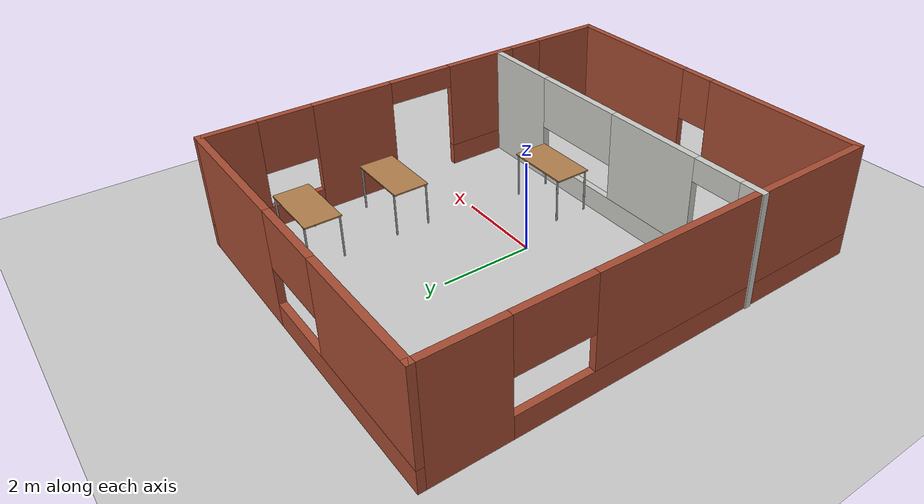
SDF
<sdf version="1.7">
 <world name="default">
  <light name="sun" type="directional">
   <pose>0 0 10 0 -0 0</pose>
   <diffuse>0.8 0.8 0.8 1</diffuse>
   <specular>0.2 0.2 0.2 1</specular>
   <attenuation>
    <range>1000</range>
    <constant>0.9</constant>
    <linear>0.01</linear>
    <quadratic>0.001</quadratic>
   </attenuation>
   <direction>-0.5 0.1 -0.9</direction>
   <spot><inner_angle>0</inner_angle><outer_angle>0</outer_angle><falloff>0</falloff></spot>
  </light>
  <model name="ground_plane">
   <static>1</static>
   <link name="link">
    <collision name="collision">
     <geometry><plane><normal>0 0 1</normal><size>100 100</size></plane></geometry>
     <surface>
      <contact><collide_bitmask>65535</collide_bitmask></contact>
      <friction><ode><mu>100</mu><mu2>50</mu2></ode></friction>
     </surface>
    </collision>
    <visual name="visual">
     <cast_shadows>0</cast_shadows>
     <geometry><plane><normal>0 0 1</normal><size>100 100</size></plane></geometry>
     <material>
      <script><uri>file://media/materials/scripts/gazebo.material</uri><name>Gazebo/Grey</name></script>
     </material>
    </visual>
   </link>
  </model>
  <gravity>0 0 -9.8</gravity>
  <magnetic_field>6e-06 2.3e-05 -4.2e-05</magnetic_field>
  <atmosphere type="adiabatic"/>
  <physics type="ode">
   <max_step_size>0.001</max_step_size>
   <real_time_factor>1</real_time_factor>
   <real_time_update_rate>1000</real_time_update_rate>
  </physics>
  <scene><ambient>0.4 0.4 0.4 1</ambient><background>0.7 0.7 0.7 1</background><shadows>1</shadows></scene>
  <spherical_coordinates>
   <surface_model>EARTH_WGS84</surface_model>
   <latitude_deg>0</latitude_deg>
   <longitude_deg>0</longitude_deg>
   <elevation>0</elevation>
   <heading_deg>0</heading_deg>
  </spherical_coordinates>
  <model name="canteen1">
   <pose>-0.008234 0.013853 0 0 -0 0</pose>
   <link name="Wall_21">
    <pose>-3.91209 0 0 0 -0 -1.5708</pose>
    <visual name="Wall_21_Visual_0">
     <pose>-4.12665 0 1.25 0 -0 0</pose>
     <geometry><box><size>1.7467 0.15 2.5</size></box></geometry>
     <material>
      <script><uri>file://media/materials/scripts/gazebo.material</uri><name>Gazebo/Bricks</name></script>
      <ambient>1 1 1 1</ambient>
     </material>
     <meta><layer>0</layer></meta>
    </visual>
    <collision name="Wall_21_Collision_0">
     <geometry><box><size>1.7467 0.15 2.5</size></box></geometry>
     <pose>-4.12665 0 1.25 0 -0 0</pose>
    </collision>
    <visual name="Wall_21_Visual_1">
     <pose>0.873349 0 0.25 0 -0 0</pose>
     <geometry><box><size>8.2533 0.15 0.5</size></box></geometry>
     <material>
      <script><uri>file://media/materials/scripts/gazebo.material</uri><name>Gazebo/Bricks</name></script>
      <ambient>1 1 1 1</ambient>
     </material>
     <meta><layer>0</layer></meta>
    </visual>
    <collision name="Wall_21_Collision_1">
     <geometry><box><size>8.2533 0.15 0.5</size></box></geometry>
     <pose>0.873349 0 0.25 0 -0 0</pose>
    </collision>
    <visual name="Wall_21_Visual_2">
     <pose>1.6897 0 1.5 0 -0 0</pose>
     <geometry><box><size>6.6206 0.15 2</size></box></geometry>
     <material>
      <script><uri>file://media/materials/scripts/gazebo.material</uri><name>Gazebo/Bricks</name></script>
      <ambient>1 1 1 1</ambient>
     </material>
     <meta><layer>0</layer></meta>
    </visual>
    <collision name="Wall_21_Collision_2">
     <geometry><box><size>6.6206 0.15 2</size></box></geometry>
     <pose>1.6897 0 1.5 0 -0 0</pose>
    </collision>
    <visual name="Wall_21_Visual_3">
     <pose>-2.43695 0 1.9 0 -0 0</pose>
     <geometry><box><size>1.6327 0.15 1.2</size></box></geometry>
     <material>
      <script><uri>file://media/materials/scripts/gazebo.material</uri><name>Gazebo/Bricks</name></script>
      <ambient>1 1 1 1</ambient>
     </material>
     <meta><layer>0</layer></meta>
    </visual>
    <collision name="Wall_21_Collision_3">
     <geometry><box><size>1.6327 0.15 1.2</size></box></geometry>
     <pose>-2.43695 0 1.9 0 -0 0</pose>
    </collision>
   </link>
   <link name="Wall_22">
    <pose>0.01291 -4.925 0 0 -0 0</pose>
    <visual name="Wall_22_Visual_0">
     <pose>-2.11092 0 1.25 0 -0 0</pose>
     <geometry><box><size>3.77817 0.15 2.5</size></box></geometry>
     <material>
      <script><uri>file://media/materials/scripts/gazebo.material</uri><name>Gazebo/Bricks</name></script>
      <ambient>1 1 1 1</ambient>
     </material>
     <meta><layer>0</layer></meta>
    </visual>
    <collision name="Wall_22_Collision_0">
     <geometry><box><size>3.77817 0.15 2.5</size></box></geometry>
     <pose>-2.11092 0 1.25 0 -0 0</pose>
    </collision>
    <visual name="Wall_22_Visual_1">
     <pose>1.88908 0 0.25 0 -0 0</pose>
     <geometry><box><size>4.22183 0.15 0.5</size></box></geometry>
     <material>
      <script><uri>file://media/materials/scripts/gazebo.material</uri><name>Gazebo/Bricks</name></script>
      <ambient>1 1 1 1</ambient>
     </material>
     <meta><layer>0</layer></meta>
    </visual>
    <collision name="Wall_22_Collision_1">
     <geometry><box><size>4.22183 0.15 0.5</size></box></geometry>
     <pose>1.88908 0 0.25 0 -0 0</pose>
    </collision>
    <visual name="Wall_22_Visual_2">
     <pose>2.28908 0 1.5 0 -0 0</pose>
     <geometry><box><size>3.42183 0.15 2</size></box></geometry>
     <material>
      <script><uri>file://media/materials/scripts/gazebo.material</uri><name>Gazebo/Bricks</name></script>
      <ambient>1 1 1 1</ambient>
     </material>
     <meta><layer>0</layer></meta>
    </visual>
    <collision name="Wall_22_Collision_2">
     <geometry><box><size>3.42183 0.15 2</size></box></geometry>
     <pose>2.28908 0 1.5 0 -0 0</pose>
    </collision>
    <visual name="Wall_22_Visual_3">
     <pose>0.178169 0 1.9 0 -0 0</pose>
     <geometry><box><size>0.8 0.15 1.2</size></box></geometry>
     <material>
      <script><uri>file://media/materials/scripts/gazebo.material</uri><name>Gazebo/Bricks</name></script>
      <ambient>1 1 1 1</ambient>
     </material>
     <meta><layer>0</layer></meta>
    </visual>
    <collision name="Wall_22_Collision_3">
     <geometry><box><size>0.8 0.15 1.2</size></box></geometry>
     <pose>0.178169 0 1.9 0 -0 0</pose>
    </collision>
   </link>
   <link name="Wall_23">
    <pose>3.93791 0 0 0 -0 1.5708</pose>
    <visual name="Wall_23_Visual_0">
     <pose>-4.15965 0 1.25 0 -0 0</pose>
     <geometry><box><size>1.68071 0.15 2.5</size></box></geometry>
     <material>
      <script><uri>file://media/materials/scripts/gazebo.material</uri><name>Gazebo/Bricks</name></script>
      <ambient>1 1 1 1</ambient>
     </material>
     <meta><layer>0</layer></meta>
    </visual>
    <collision name="Wall_23_Collision_0">
     <geometry><box><size>1.68071 0.15 2.5</size></box></geometry>
     <pose>-4.15965 0 1.25 0 -0 0</pose>
    </collision>
    <visual name="Wall_23_Visual_1">
     <pose>1.6564 0 1.25 0 -0 0</pose>
     <geometry><box><size>1.83516 0.15 2.5</size></box></geometry>
     <material>
      <script><uri>file://media/materials/scripts/gazebo.material</uri><name>Gazebo/Bricks</name></script>
      <ambient>1 1 1 1</ambient>
     </material>
     <meta><layer>0</layer></meta>
    </visual>
    <collision name="Wall_23_Collision_1">
     <geometry><box><size>1.83516 0.15 2.5</size></box></geometry>
     <pose>1.6564 0 1.25 0 -0 0</pose>
    </collision>
    <visual name="Wall_23_Visual_2">
     <pose>-2.04194 0 0.25 0 -0 0</pose>
     <geometry><box><size>2.55471 0.15 0.5</size></box></geometry>
     <material>
      <script><uri>file://media/materials/scripts/gazebo.material</uri><name>Gazebo/Bricks</name></script>
      <ambient>1 1 1 1</ambient>
     </material>
     <meta><layer>0</layer></meta>
    </visual>
    <collision name="Wall_23_Collision_2">
     <geometry><box><size>2.55471 0.15 0.5</size></box></geometry>
     <pose>-2.04194 0 0.25 0 -0 0</pose>
    </collision>
    <visual name="Wall_23_Visual_3">
     <pose>3.78699 0 0.25 0 -0 0</pose>
     <geometry><box><size>2.42602 0.15 0.5</size></box></geometry>
     <material>
      <script><uri>file://media/materials/scripts/gazebo.material</uri><name>Gazebo/Bricks</name></script>
      <ambient>1 1 1 1</ambient>
     </material>
     <meta><layer>0</layer></meta>
    </visual>
    <collision name="Wall_23_Collision_3">
     <geometry><box><size>2.42602 0.15 0.5</size></box></geometry>
     <pose>3.78699 0 0.25 0 -0 0</pose>
    </collision>
    <visual name="Wall_23_Visual_4">
     <pose>-1.64194 0 1.5 0 -0 0</pose>
     <geometry><box><size>1.75471 0.15 2</size></box></geometry>
     <material>
      <script><uri>file://media/materials/scripts/gazebo.material</uri><name>Gazebo/Bricks</name></script>
      <ambient>1 1 1 1</ambient>
     </material>
     <meta><layer>0</layer></meta>
    </visual>
    <collision name="Wall_23_Collision_4">
     <geometry><box><size>1.75471 0.15 2</size></box></geometry>
     <pose>-1.64194 0 1.5 0 -0 0</pose>
    </collision>
    <visual name="Wall_23_Visual_5">
     <pose>-1.64194 0 1.5 0 -0 0</pose>
     <geometry><box><size>1.75471 0.15 2</size></box></geometry>
     <material>
      <script><uri>file://media/materials/scripts/gazebo.material</uri><name>Gazebo/Bricks</name></script>
      <ambient>1 1 1 1</ambient>
     </material>
     <meta><layer>0</layer></meta>
    </visual>
    <collision name="Wall_23_Collision_5">
     <geometry><box><size>1.75471 0.15 2</size></box></geometry>
     <pose>-1.64194 0 1.5 0 -0 0</pose>
    </collision>
    <visual name="Wall_23_Visual_6">
     <pose>4.3836 0 1.5 0 -0 0</pose>
     <geometry><box><size>1.2328 0.15 2</size></box></geometry>
     <material>
      <script><uri>file://media/materials/scripts/gazebo.material</uri><name>Gazebo/Bricks</name></script>
      <ambient>1 1 1 1</ambient>
     </material>
     <meta><layer>0</layer></meta>
    </visual>
    <collision name="Wall_23_Collision_6">
     <geometry><box><size>1.2328 0.15 2</size></box></geometry>
     <pose>4.3836 0 1.5 0 -0 0</pose>
    </collision>
    <visual name="Wall_23_Visual_7">
     <pose>-2.91929 0 1.9 0 -0 0</pose>
     <geometry><box><size>0.8 0.15 1.2</size></box></geometry>
     <material>
      <script><uri>file://media/materials/scripts/gazebo.material</uri><name>Gazebo/Bricks</name></script>
      <ambient>1 1 1 1</ambient>
     </material>
     <meta><layer>0</layer></meta>
    </visual>
    <collision name="Wall_23_Collision_7">
     <geometry><box><size>0.8 0.15 1.2</size></box></geometry>
     <pose>-2.91929 0 1.9 0 -0 0</pose>
    </collision>
    <visual name="Wall_23_Visual_8">
     <pose>3.17059 0 1.9 0 -0 0</pose>
     <geometry><box><size>1.19322 0.15 1.2</size></box></geometry>
     <material>
      <script><uri>file://media/materials/scripts/gazebo.material</uri><name>Gazebo/Bricks</name></script>
      <ambient>1 1 1 1</ambient>
     </material>
     <meta><layer>0</layer></meta>
    </visual>
    <collision name="Wall_23_Collision_8">
     <geometry><box><size>1.19322 0.15 1.2</size></box></geometry>
     <pose>3.17059 0 1.9 0 -0 0</pose>
    </collision>
    <visual name="Wall_23_Visual_9">
     <pose>-0.012882 0 2.25 0 -0 0</pose>
     <geometry><box><size>1.50341 0.15 0.5</size></box></geometry>
     <material>
      <script><uri>file://media/materials/scripts/gazebo.material</uri><name>Gazebo/Bricks</name></script>
      <ambient>1 1 1 1</ambient>
     </material>
     <meta><layer>0</layer></meta>
    </visual>
    <collision name="Wall_23_Collision_9">
     <geometry><box><size>1.50341 0.15 0.5</size></box></geometry>
     <pose>-0.012882 0 2.25 0 -0 0</pose>
    </collision>
    <visual name="Wall_23_Visual_10">
     <pose>-0.012882 0 2.25 0 -0 0</pose>
     <geometry><box><size>1.50341 0.15 0.5</size></box></geometry>
     <material>
      <script><uri>file://media/materials/scripts/gazebo.material</uri><name>Gazebo/Bricks</name></script>
      <ambient>1 1 1 1</ambient>
     </material>
     <meta><layer>0</layer></meta>
    </visual>
    <collision name="Wall_23_Collision_10">
     <geometry><box><size>1.50341 0.15 0.5</size></box></geometry>
     <pose>-0.012882 0 2.25 0 -0 0</pose>
    </collision>
   </link>
   <link name="Wall_24">
    <pose>0.01291 4.925 0 0 -0 3.14159</pose>
    <visual name="Wall_24_Visual_0">
     <pose>-2.36049 0 1.25 0 -0 0</pose>
     <geometry><box><size>3.27902 0.15 2.5</size></box></geometry>
     <material>
      <script><uri>file://media/materials/scripts/gazebo.material</uri><name>Gazebo/Bricks</name></script>
      <ambient>1 1 1 1</ambient>
     </material>
     <meta><layer>0</layer></meta>
    </visual>
    <collision name="Wall_24_Collision_0">
     <geometry><box><size>3.27902 0.15 2.5</size></box></geometry>
     <pose>-2.36049 0 1.25 0 -0 0</pose>
    </collision>
    <visual name="Wall_24_Visual_1">
     <pose>1.63951 0 0.25 0 -0 0</pose>
     <geometry><box><size>4.72098 0.15 0.5</size></box></geometry>
     <material>
      <script><uri>file://media/materials/scripts/gazebo.material</uri><name>Gazebo/Bricks</name></script>
      <ambient>1 1 1 1</ambient>
     </material>
     <meta><layer>0</layer></meta>
    </visual>
    <collision name="Wall_24_Collision_1">
     <geometry><box><size>4.72098 0.15 0.5</size></box></geometry>
     <pose>1.63951 0 0.25 0 -0 0</pose>
    </collision>
    <visual name="Wall_24_Visual_2">
     <pose>2.49056 0 1.5 0 -0 0</pose>
     <geometry><box><size>3.01888 0.15 2</size></box></geometry>
     <material>
      <script><uri>file://media/materials/scripts/gazebo.material</uri><name>Gazebo/Bricks</name></script>
      <ambient>1 1 1 1</ambient>
     </material>
     <meta><layer>0</layer></meta>
    </visual>
    <collision name="Wall_24_Collision_2">
     <geometry><box><size>3.01888 0.15 2</size></box></geometry>
     <pose>2.49056 0 1.5 0 -0 0</pose>
    </collision>
    <visual name="Wall_24_Visual_3">
     <pose>0.130072 0 1.9 0 -0 0</pose>
     <geometry><box><size>1.70209 0.15 1.2</size></box></geometry>
     <material>
      <script><uri>file://media/materials/scripts/gazebo.material</uri><name>Gazebo/Bricks</name></script>
      <ambient>1 1 1 1</ambient>
     </material>
     <meta><layer>0</layer></meta>
    </visual>
    <collision name="Wall_24_Collision_3">
     <geometry><box><size>1.70209 0.15 1.2</size></box></geometry>
     <pose>0.130072 0 1.9 0 -0 0</pose>
    </collision>
   </link>
   <link name="Wall_26">
    <pose>-0.012911 -2.15498 0 0 -0 3.14159</pose>
    <visual name="Wall_26_Visual_0">
     <pose>-3.05324 0 1.25 0 -0 0</pose>
     <geometry><box><size>1.89353 0.15 2.5</size></box></geometry>
     <material>
      <script><uri>file://media/materials/scripts/gazebo.material</uri><name>Gazebo/CeilingTiled</name></script>
      <ambient>0.760784 0.662745 0.627451 1</ambient>
     </material>
     <meta><layer>0</layer></meta>
    </visual>
    <collision name="Wall_26_Collision_0">
     <geometry><box><size>1.89353 0.15 2.5</size></box></geometry>
     <pose>-3.05324 0 1.25 0 -0 0</pose>
    </collision>
    <visual name="Wall_26_Visual_1">
     <pose>3.73712 0 1.25 0 -0 0</pose>
     <geometry><box><size>0.525761 0.15 2.5</size></box></geometry>
     <material>
      <script><uri>file://media/materials/scripts/gazebo.material</uri><name>Gazebo/CeilingTiled</name></script>
      <ambient>0.760784 0.662745 0.627451 1</ambient>
     </material>
     <meta><layer>0</layer></meta>
    </visual>
    <collision name="Wall_26_Collision_1">
     <geometry><box><size>0.525761 0.15 2.5</size></box></geometry>
     <pose>3.73712 0 1.25 0 -0 0</pose>
    </collision>
    <visual name="Wall_26_Visual_2">
     <pose>0.133315 0 0.25 0 -0 0</pose>
     <geometry><box><size>4.47958 0.15 0.5</size></box></geometry>
     <material>
      <script><uri>file://media/materials/scripts/gazebo.material</uri><name>Gazebo/CeilingTiled</name></script>
      <ambient>0.760784 0.662745 0.627451 1</ambient>
     </material>
     <meta><layer>0</layer></meta>
    </visual>
    <collision name="Wall_26_Collision_2">
     <geometry><box><size>4.47958 0.15 0.5</size></box></geometry>
     <pose>0.133315 0 0.25 0 -0 0</pose>
    </collision>
    <visual name="Wall_26_Visual_3">
     <pose>1.23327 0 1.5 0 -0 0</pose>
     <geometry><box><size>2.27967 0.15 2</size></box></geometry>
     <material>
      <script><uri>file://media/materials/scripts/gazebo.material</uri><name>Gazebo/CeilingTiled</name></script>
      <ambient>0.760784 0.662745 0.627451 1</ambient>
     </material>
     <meta><layer>0</layer></meta>
    </visual>
    <collision name="Wall_26_Collision_3">
     <geometry><box><size>2.27967 0.15 2</size></box></geometry>
     <pose>1.23327 0 1.5 0 -0 0</pose>
    </collision>
    <visual name="Wall_26_Visual_4">
     <pose>-1.00652 0 1.9 0 -0 0</pose>
     <geometry><box><size>2.19991 0.15 1.2</size></box></geometry>
     <material>
      <script><uri>file://media/materials/scripts/gazebo.material</uri><name>Gazebo/CeilingTiled</name></script>
      <ambient>0.760784 0.662745 0.627451 1</ambient>
     </material>
     <meta><layer>0</layer></meta>
    </visual>
    <collision name="Wall_26_Collision_4">
     <geometry><box><size>2.19991 0.15 1.2</size></box></geometry>
     <pose>-1.00652 0 1.9 0 -0 0</pose>
    </collision>
    <visual name="Wall_26_Visual_5">
     <pose>2.92367 0 2.25 0 -0 0</pose>
     <geometry><box><size>1.10114 0.15 0.5</size></box></geometry>
     <material>
      <script><uri>file://media/materials/scripts/gazebo.material</uri><name>Gazebo/CeilingTiled</name></script>
      <ambient>0.760784 0.662745 0.627451 1</ambient>
     </material>
     <meta><layer>0</layer></meta>
    </visual>
    <collision name="Wall_26_Collision_5">
     <geometry><box><size>1.10114 0.15 0.5</size></box></geometry>
     <pose>2.92367 0 2.25 0 -0 0</pose>
    </collision>
   </link>
   <static>1</static>
  </model>
  <model name="table">
   <static>1</static>
   <link name="link">
    <collision name="surface">
     <pose>0 0 1 0 -0 0</pose>
     <geometry><box><size>1.5 0.8 0.03</size></box></geometry>
     <surface><friction><ode><mu>0.6</mu><mu2>0.6</mu2></ode></friction></surface>
    </collision>
    <visual name="visual1">
     <pose>0 0 1 0 -0 0</pose>
     <geometry><box><size>1.5 0.8 0.03</size></box></geometry>
     <material>
      <script><uri>file://media/materials/scripts/gazebo.material</uri><name>Gazebo/Wood</name></script>
     </material>
    </visual>
    <collision name="front_left_leg">
     <pose>0.68 0.38 0.5 0 -0 0</pose>
     <geometry><cylinder><radius>0.02</radius><length>1</length></cylinder></geometry>
    </collision>
    <visual name="front_left_leg">
     <pose>0.68 0.38 0.5 0 -0 0</pose>
     <geometry><cylinder><radius>0.02</radius><length>1</length></cylinder></geometry>
     <material>
      <script><uri>file://media/materials/scripts/gazebo.material</uri><name>Gazebo/Grey</name></script>
     </material>
    </visual>
    <collision name="front_right_leg">
     <pose>0.68 -0.38 0.5 0 -0 0</pose>
     <geometry><cylinder><radius>0.02</radius><length>1</length></cylinder></geometry>
    </collision>
    <visual name="front_right_leg">
     <pose>0.68 -0.38 0.5 0 -0 0</pose>
     <geometry><cylinder><radius>0.02</radius><length>1</length></cylinder></geometry>
     <material>
      <script><uri>file://media/materials/scripts/gazebo.material</uri><name>Gazebo/Grey</name></script>
     </material>
    </visual>
    <collision name="back_right_leg">
     <pose>-0.68 -0.38 0.5 0 -0 0</pose>
     <geometry><cylinder><radius>0.02</radius><length>1</length></cylinder></geometry>
    </collision>
    <visual name="back_right_leg">
     <pose>-0.68 -0.38 0.5 0 -0 0</pose>
     <geometry><cylinder><radius>0.02</radius><length>1</length></cylinder></geometry>
     <material>
      <script><uri>file://media/materials/scripts/gazebo.material</uri><name>Gazebo/Grey</name></script>
     </material>
    </visual>
    <collision name="back_left_leg">
     <pose>-0.68 0.38 0.5 0 -0 0</pose>
     <geometry><cylinder><radius>0.02</radius><length>1</length></cylinder></geometry>
    </collision>
    <visual name="back_left_leg">
     <pose>-0.68 0.38 0.5 0 -0 0</pose>
     <geometry><cylinder><radius>0.02</radius><length>1</length></cylinder></geometry>
     <material>
      <script><uri>file://media/materials/scripts/gazebo.material</uri><name>Gazebo/Grey</name></script>
     </material>
    </visual>
   </link>
   <pose>2.70806 3.47933 0 0 -0 0</pose>
  </model>
  <model name="table_0">
   <static>1</static>
   <link name="link">
    <collision name="surface">
     <pose>0 0 1 0 -0 0</pose>
     <geometry><box><size>1.5 0.8 0.03</size></box></geometry>
     <surface><friction><ode><mu>0.6</mu><mu2>0.6</mu2></ode></friction></surface>
    </collision>
    <visual name="visual1">
     <pose>0 0 1 0 -0 0</pose>
     <geometry><box><size>1.5 0.8 0.03</size></box></geometry>
     <material>
      <script><uri>file://media/materials/scripts/gazebo.material</uri><name>Gazebo/Wood</name></script>
     </material>
    </visual>
    <collision name="front_left_leg">
     <pose>0.68 0.38 0.5 0 -0 0</pose>
     <geometry><cylinder><radius>0.02</radius><length>1</length></cylinder></geometry>
    </collision>
    <visual name="front_left_leg">
     <pose>0.68 0.38 0.5 0 -0 0</pose>
     <geometry><cylinder><radius>0.02</radius><length>1</length></cylinder></geometry>
     <material>
      <script><uri>file://media/materials/scripts/gazebo.material</uri><name>Gazebo/Grey</name></script>
     </material>
    </visual>
    <collision name="front_right_leg">
     <pose>0.68 -0.38 0.5 0 -0 0</pose>
     <geometry><cylinder><radius>0.02</radius><length>1</length></cylinder></geometry>
    </collision>
    <visual name="front_right_leg">
     <pose>0.68 -0.38 0.5 0 -0 0</pose>
     <geometry><cylinder><radius>0.02</radius><length>1</length></cylinder></geometry>
     <material>
      <script><uri>file://media/materials/scripts/gazebo.material</uri><name>Gazebo/Grey</name></script>
     </material>
    </visual>
    <collision name="back_right_leg">
     <pose>-0.68 -0.38 0.5 0 -0 0</pose>
     <geometry><cylinder><radius>0.02</radius><length>1</length></cylinder></geometry>
    </collision>
    <visual name="back_right_leg">
     <pose>-0.68 -0.38 0.5 0 -0 0</pose>
     <geometry><cylinder><radius>0.02</radius><length>1</length></cylinder></geometry>
     <material>
      <script><uri>file://media/materials/scripts/gazebo.material</uri><name>Gazebo/Grey</name></script>
     </material>
    </visual>
    <collision name="back_left_leg">
     <pose>-0.68 0.38 0.5 0 -0 0</pose>
     <geometry><cylinder><radius>0.02</radius><length>1</length></cylinder></geometry>
    </collision>
    <visual name="back_left_leg">
     <pose>-0.68 0.38 0.5 0 -0 0</pose>
     <geometry><cylinder><radius>0.02</radius><length>1</length></cylinder></geometry>
     <material>
      <script><uri>file://media/materials/scripts/gazebo.material</uri><name>Gazebo/Grey</name></script>
     </material>
    </visual>
   </link>
   <pose>2.7158 1.4895 0 0 -0 0</pose>
  </model>
  <model name="table_1">
   <static>1</static>
   <link name="link">
    <collision name="surface">
     <pose>0 0 1 0 -0 0</pose>
     <geometry><box><size>1.5 0.8 0.03</size></box></geometry>
     <surface><friction><ode><mu>0.6</mu><mu2>0.6</mu2></ode></friction></surface>
    </collision>
    <visual name="visual1">
     <pose>0 0 1 0 -0 0</pose>
     <geometry><box><size>1.5 0.8 0.03</size></box></geometry>
     <material>
      <script><uri>file://media/materials/scripts/gazebo.material</uri><name>Gazebo/Wood</name></script>
     </material>
    </visual>
    <collision name="front_left_leg">
     <pose>0.68 0.38 0.5 0 -0 0</pose>
     <geometry><cylinder><radius>0.02</radius><length>1</length></cylinder></geometry>
    </collision>
    <visual name="front_left_leg">
     <pose>0.68 0.38 0.5 0 -0 0</pose>
     <geometry><cylinder><radius>0.02</radius><length>1</length></cylinder></geometry>
     <material>
      <script><uri>file://media/materials/scripts/gazebo.material</uri><name>Gazebo/Grey</name></script>
     </material>
    </visual>
    <collision name="front_right_leg">
     <pose>0.68 -0.38 0.5 0 -0 0</pose>
     <geometry><cylinder><radius>0.02</radius><length>1</length></cylinder></geometry>
    </collision>
    <visual name="front_right_leg">
     <pose>0.68 -0.38 0.5 0 -0 0</pose>
     <geometry><cylinder><radius>0.02</radius><length>1</length></cylinder></geometry>
     <material>
      <script><uri>file://media/materials/scripts/gazebo.material</uri><name>Gazebo/Grey</name></script>
     </material>
    </visual>
    <collision name="back_right_leg">
     <pose>-0.68 -0.38 0.5 0 -0 0</pose>
     <geometry><cylinder><radius>0.02</radius><length>1</length></cylinder></geometry>
    </collision>
    <visual name="back_right_leg">
     <pose>-0.68 -0.38 0.5 0 -0 0</pose>
     <geometry><cylinder><radius>0.02</radius><length>1</length></cylinder></geometry>
     <material>
      <script><uri>file://media/materials/scripts/gazebo.material</uri><name>Gazebo/Grey</name></script>
     </material>
    </visual>
    <collision name="back_left_leg">
     <pose>-0.68 0.38 0.5 0 -0 0</pose>
     <geometry><cylinder><radius>0.02</radius><length>1</length></cylinder></geometry>
    </collision>
    <visual name="back_left_leg">
     <pose>-0.68 0.38 0.5 0 -0 0</pose>
     <geometry><cylinder><radius>0.02</radius><length>1</length></cylinder></geometry>
     <material>
      <script><uri>file://media/materials/scripts/gazebo.material</uri><name>Gazebo/Grey</name></script>
     </material>
    </visual>
   </link>
   <pose>1.12445 -1.52715 0 0 -0 0</pose>
  </model>
  <model name="table_1">
   <static>1</static>
   <link name="link">
    <collision name="surface">
     <pose>0 0 1 0 -0 0</pose>
     <geometry><box><size>1.5 0.8 0.03</size></box></geometry>
     <surface><friction><ode><mu>0.6</mu><mu2>0.6</mu2></ode></friction></surface>
    </collision>
    <visual name="visual1">
     <pose>0 0 1 0 -0 0</pose>
     <geometry><box><size>1.5 0.8 0.03</size></box></geometry>
     <material>
      <script><uri>file://media/materials/scripts/gazebo.material</uri><name>Gazebo/Wood</name></script>
     </material>
    </visual>
    <collision name="front_left_leg">
     <pose>0.68 0.38 0.5 0 -0 0</pose>
     <geometry><cylinder><radius>0.02</radius><length>1</length></cylinder></geometry>
    </collision>
    <visual name="front_left_leg">
     <pose>0.68 0.38 0.5 0 -0 0</pose>
     <geometry><cylinder><radius>0.02</radius><length>1</length></cylinder></geometry>
     <material>
      <script><uri>file://media/materials/scripts/gazebo.material</uri><name>Gazebo/Grey</name></script>
     </material>
    </visual>
    <collision name="front_right_leg">
     <pose>0.68 -0.38 0.5 0 -0 0</pose>
     <geometry><cylinder><radius>0.02</radius><length>1</length></cylinder></geometry>
    </collision>
    <visual name="front_right_leg">
     <pose>0.68 -0.38 0.5 0 -0 0</pose>
     <geometry><cylinder><radius>0.02</radius><length>1</length></cylinder></geometry>
     <material>
      <script><uri>file://media/materials/scripts/gazebo.material</uri><name>Gazebo/Grey</name></script>
     </material>
    </visual>
    <collision name="back_right_leg">
     <pose>-0.68 -0.38 0.5 0 -0 0</pose>
     <geometry><cylinder><radius>0.02</radius><length>1</length></cylinder></geometry>
    </collision>
    <visual name="back_right_leg">
     <pose>-0.68 -0.38 0.5 0 -0 0</pose>
     <geometry><cylinder><radius>0.02</radius><length>1</length></cylinder></geometry>
     <material>
      <script><uri>file://media/materials/scripts/gazebo.material</uri><name>Gazebo/Grey</name></script>
     </material>
    </visual>
    <collision name="back_left_leg">
     <pose>-0.68 0.38 0.5 0 -0 0</pose>
     <geometry><cylinder><radius>0.02</radius><length>1</length></cylinder></geometry>
    </collision>
    <visual name="back_left_leg">
     <pose>-0.68 0.38 0.5 0 -0 0</pose>
     <geometry><cylinder><radius>0.02</radius><length>1</length></cylinder></geometry>
     <material>
      <script><uri>file://media/materials/scripts/gazebo.material</uri><name>Gazebo/Grey</name></script>
     </material>
    </visual>
   </link>
   <pose>1.12445 -1.52715 0 0 -0 0</pose>
  </model>
  <model name="table_1">
   <static>1</static>
   <link name="link">
    <collision name="surface">
     <pose>0 0 1 0 -0 0</pose>
     <geometry><box><size>1.5 0.8 0.03</size></box></geometry>
     <surface><friction><ode><mu>0.6</mu><mu2>0.6</mu2></ode></friction></surface>
    </collision>
    <visual name="visual1">
     <pose>0 0 1 0 -0 0</pose>
     <geometry><box><size>1.5 0.8 0.03</size></box></geometry>
     <material>
      <script><uri>file://media/materials/scripts/gazebo.material</uri><name>Gazebo/Wood</name></script>
     </material>
    </visual>
    <collision name="front_left_leg">
     <pose>0.68 0.38 0.5 0 -0 0</pose>
     <geometry><cylinder><radius>0.02</radius><length>1</length></cylinder></geometry>
    </collision>
    <visual name="front_left_leg">
     <pose>0.68 0.38 0.5 0 -0 0</pose>
     <geometry><cylinder><radius>0.02</radius><length>1</length></cylinder></geometry>
     <material>
      <script><uri>file://media/materials/scripts/gazebo.material</uri><name>Gazebo/Grey</name></script>
     </material>
    </visual>
    <collision name="front_right_leg">
     <pose>0.68 -0.38 0.5 0 -0 0</pose>
     <geometry><cylinder><radius>0.02</radius><length>1</length></cylinder></geometry>
    </collision>
    <visual name="front_right_leg">
     <pose>0.68 -0.38 0.5 0 -0 0</pose>
     <geometry><cylinder><radius>0.02</radius><length>1</length></cylinder></geometry>
     <material>
      <script><uri>file://media/materials/scripts/gazebo.material</uri><name>Gazebo/Grey</name></script>
     </material>
    </visual>
    <collision name="back_right_leg">
     <pose>-0.68 -0.38 0.5 0 -0 0</pose>
     <geometry><cylinder><radius>0.02</radius><length>1</length></cylinder></geometry>
    </collision>
    <visual name="back_right_leg">
     <pose>-0.68 -0.38 0.5 0 -0 0</pose>
     <geometry><cylinder><radius>0.02</radius><length>1</length></cylinder></geometry>
     <material>
      <script><uri>file://media/materials/scripts/gazebo.material</uri><name>Gazebo/Grey</name></script>
     </material>
    </visual>
    <collision name="back_left_leg">
     <pose>-0.68 0.38 0.5 0 -0 0</pose>
     <geometry><cylinder><radius>0.02</radius><length>1</length></cylinder></geometry>
    </collision>
    <visual name="back_left_leg">
     <pose>-0.68 0.38 0.5 0 -0 0</pose>
     <geometry><cylinder><radius>0.02</radius><length>1</length></cylinder></geometry>
     <material>
      <script><uri>file://media/materials/scripts/gazebo.material</uri><name>Gazebo/Grey</name></script>
     </material>
    </visual>
   </link>
   <pose>1.12445 -1.52715 0 0 -0 0</pose>
  </model>
 </world>
</sdf>
